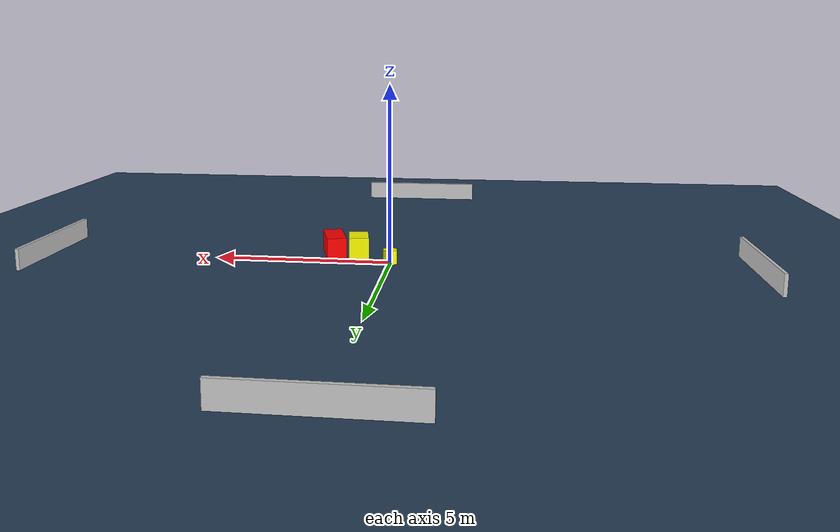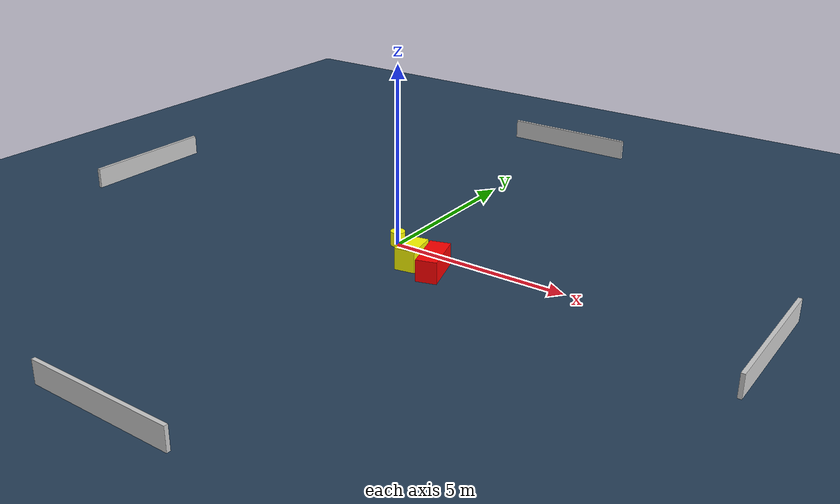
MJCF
<?xml version="1.0" ?>
<mujoco model="generated_environment">
  <option timestep="0.01" integrator="RK4" cone="elliptic"/>
  <default>
    <geom density="1"/>
  </default>
  <asset>
    <texture builtin="gradient" height="3072" name="skybox" rgb1="0.3 0.5 0.7" rgb2="0 0 0" type="skybox" width="512"/>
    <texture builtin="checker" height="300" name="groundplane" rgb1="0.2 0.3 0.4" rgb2="0.1 0.2 0.3" type="2d" width="300"/>
    <material name="groundplane" reflectance="0.2" texrepeat="5 5" texture="groundplane"/>
  </asset>
  <worldbody>
    <light dir="0 0 -1" directional="true" pos="0 0 1.5"/>
    <geom condim="3" friction="0.5 0.005 0.001" material="groundplane" name="floor" pos="0 0 0" size="0 0 0.05" type="plane"/>
    <body name="walls">
      <geom name="wall_1" condim="4" pos="-10.0 0.0 0.3" rgba="0.800000011920929 0.800000011920929 0.800000011920929 1.0" size="0.05 2.0 0.3" type="box"/>
      <geom name="wall_2" condim="4" pos="10.0 0.0 0.3" rgba="0.800000011920929 0.800000011920929 0.800000011920929 1.0" size="0.05 2.0 0.3" type="box"/>
      <geom name="wall_3" condim="4" pos="0.0 -10.0 0.3" rgba="0.800000011920929 0.800000011920929 0.800000011920929 1.0" size="2.0 0.05 0.3" type="box"/>
      <geom name="wall_4" condim="4" pos="0.0 10.0 0.3" rgba="0.800000011920929 0.800000011920929 0.800000011920929 1.0" size="2.0 0.05 0.3" type="box"/>
    </body>
    <body name="robot">
      <joint name="joint_x" type="slide" pos="0 0 0" axis="1 0 0"/>
      <joint name="joint_y" type="slide" pos="0 0 0" axis="0 1 0"/>
      <geom name="robot" type="cylinder" pos="0.0 0.0 0.2" size="0.2 0.2 0.0" mass="5.0" friction="1.0 0.005 0.0001" condim="4" rgba="1.0 1.0 0.0 1.0"/>
    </body>
    <body name="obstacle_1_movable">
      <geom name="obstacle_1_movable" condim="4" pos="1.02285269889023 -0.8154358498563208 0.3" euler="0 0 190.0520674794783" friction="0.0 0.005 0.001" rgba="1.0 1.0 0.0 1.0" size="0.28323272353077056 0.4414187769516311 0.3" type="box" mass="0.1"/>
      <joint type="free"/>
    </body>
    <body name="obstacle_2_static">
      <geom name="obstacle_2_static" condim="4" pos="1.7483121224079292 -0.877629840313812 0.3" euler="0 0 196.73107484820318" friction="0.0 0.005 0.001" rgba="1.0 0.0 0.0 1.0" size="0.280901495376327 0.6184472018500605 0.3" type="box"/>
    </body>
  </worldbody>
  <actuator>
    <motor name="actuator_x" joint="joint_x" gear="1" ctrlrange="-1 1"/>
    <motor name="actuator_y" joint="joint_y" gear="1" ctrlrange="-1 1"/>
  </actuator>
</mujoco>
